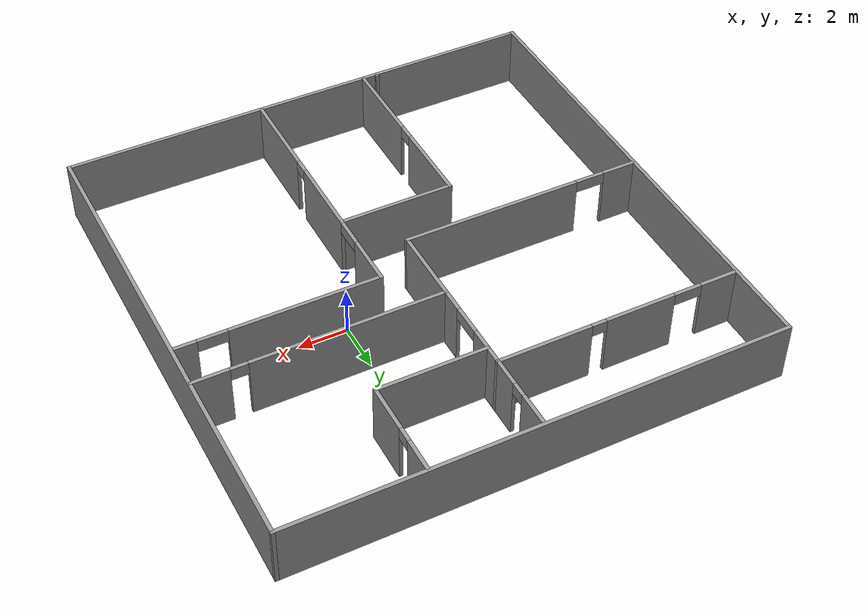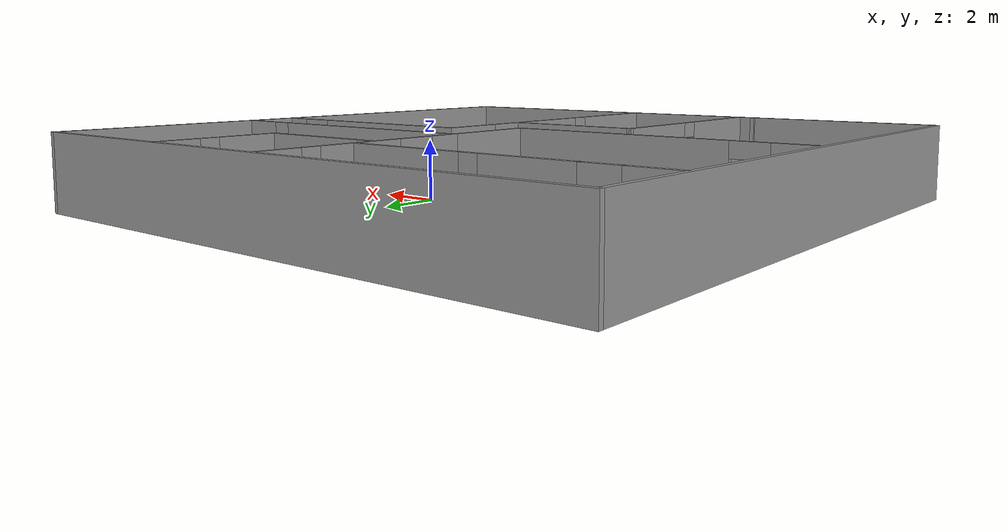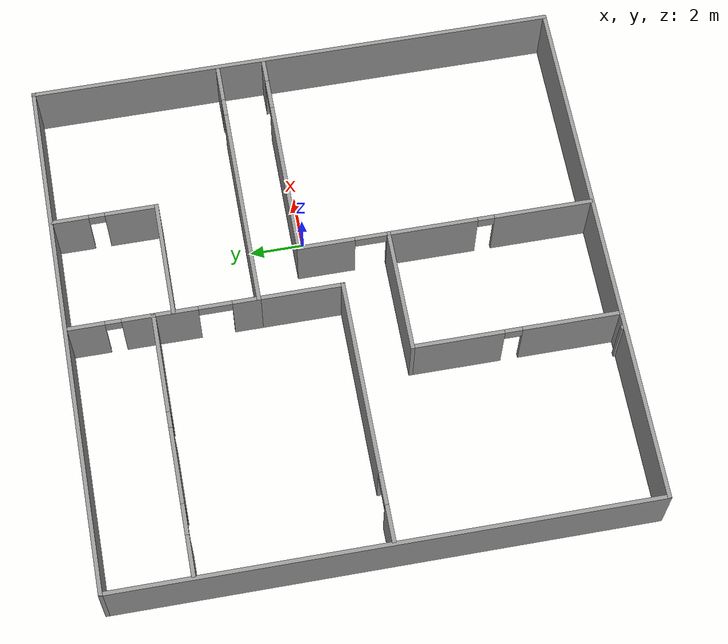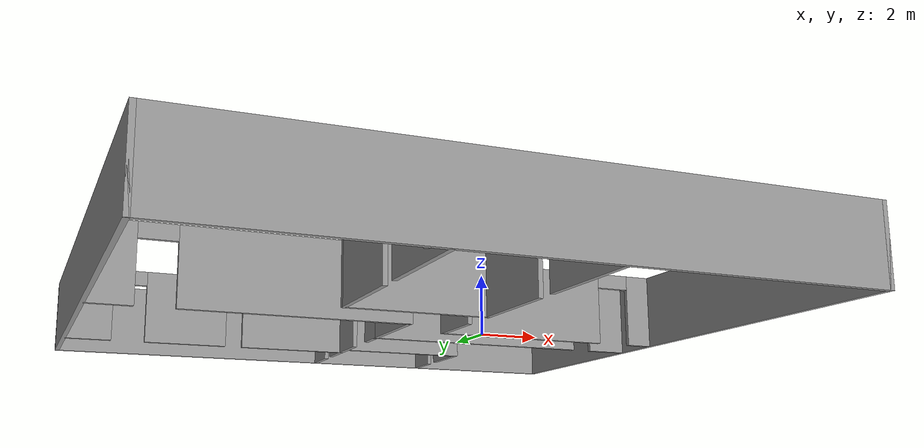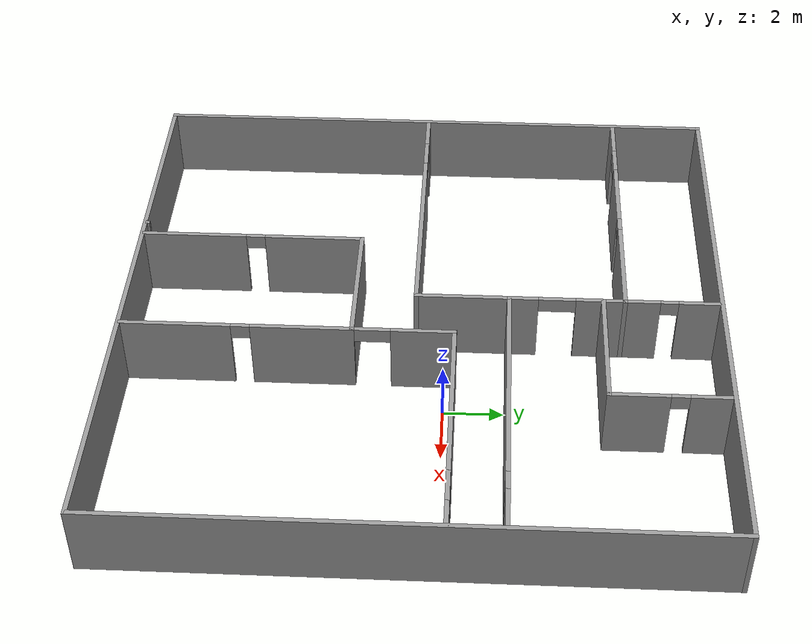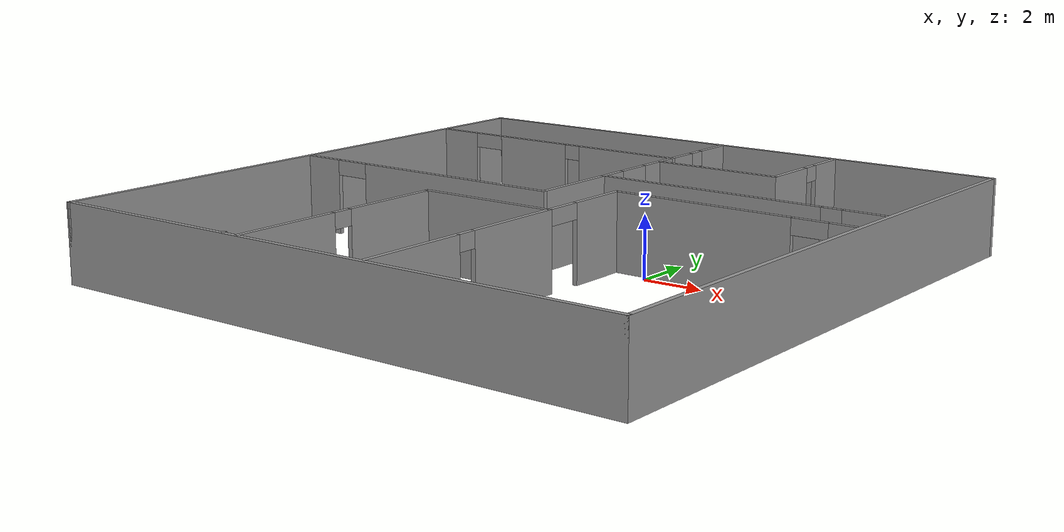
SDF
<?xml version='1.0'?>
<sdf version='1.6'>
  <model name='MAPv0.9'>
    <pose frame=''>-3.0494 -0.781174 0 0 -0 0</pose>
    <link name='Wall_11'>
      <pose frame=''>-4.89299 6.71712 0 0 -0 0</pose>
      <visual name='Wall_11_Visual_0'>
        <pose frame=''>-4.23368 0 1.25 0 -0 0</pose>
        <geometry>
          <box>
            <size>1.53263 0.15 2.5</size>
          </box>
        </geometry>
        <material>
          <script>
            <uri>file://media/materials/scripts/gazebo.material</uri>
            <name>Gazebo/Grey</name>
          </script>
          <ambient>1 1 1 1</ambient>
        </material>
        <meta>
          <layer>0</layer>
        </meta>
      </visual>
      <collision name='Wall_11_Collision_0'>
        <geometry>
          <box>
            <size>1.53263 0.15 2.5</size>
          </box>
        </geometry>
        <pose frame=''>-4.23368 0 1.25 0 -0 0</pose>
      </collision>
      <visual name='Wall_11_Visual_1'>
        <pose frame=''>-0.89726 0 1.25 0 -0 0</pose>
        <geometry>
          <box>
            <size>2.85749 0.15 2.5</size>
          </box>
        </geometry>
        <material>
          <script>
            <uri>file://media/materials/scripts/gazebo.material</uri>
            <name>Gazebo/Grey</name>
          </script>
          <ambient>1 1 1 1</ambient>
        </material>
        <meta>
          <layer>0</layer>
        </meta>
      </visual>
      <collision name='Wall_11_Collision_1'>
        <geometry>
          <box>
            <size>2.85749 0.15 2.5</size>
          </box>
        </geometry>
        <pose frame=''>-0.89726 0 1.25 0 -0 0</pose>
      </collision>
      <visual name='Wall_11_Visual_2'>
        <pose frame=''>3.06864 0 1.25 0 -0 0</pose>
        <geometry>
          <box>
            <size>3.86273 0.15 2.5</size>
          </box>
        </geometry>
        <material>
          <script>
            <uri>file://media/materials/scripts/gazebo.material</uri>
            <name>Gazebo/Grey</name>
          </script>
          <ambient>1 1 1 1</ambient>
        </material>
        <meta>
          <layer>0</layer>
        </meta>
      </visual>
      <collision name='Wall_11_Collision_2'>
        <geometry>
          <box>
            <size>3.86273 0.15 2.5</size>
          </box>
        </geometry>
        <pose frame=''>3.06864 0 1.25 0 -0 0</pose>
      </collision>
      <visual name='Wall_11_Visual_3'>
        <pose frame=''>-2.89669 0 2.25 0 -0 0</pose>
        <geometry>
          <box>
            <size>1.14136 0.15 0.5</size>
          </box>
        </geometry>
        <material>
          <script>
            <uri>file://media/materials/scripts/gazebo.material</uri>
            <name>Gazebo/Grey</name>
          </script>
          <ambient>1 1 1 1</ambient>
        </material>
        <meta>
          <layer>0</layer>
        </meta>
      </visual>
      <collision name='Wall_11_Collision_3'>
        <geometry>
          <box>
            <size>1.14136 0.15 0.5</size>
          </box>
        </geometry>
        <pose frame=''>-2.89669 0 2.25 0 -0 0</pose>
      </collision>
      <visual name='Wall_11_Visual_4'>
        <pose frame=''>0.834381 0 2.25 0 -0 0</pose>
        <geometry>
          <box>
            <size>0.605789 0.15 0.5</size>
          </box>
        </geometry>
        <material>
          <script>
            <uri>file://media/materials/scripts/gazebo.material</uri>
            <name>Gazebo/Grey</name>
          </script>
          <ambient>1 1 1 1</ambient>
        </material>
        <meta>
          <layer>0</layer>
        </meta>
      </visual>
      <collision name='Wall_11_Collision_4'>
        <geometry>
          <box>
            <size>0.605789 0.15 0.5</size>
          </box>
        </geometry>
        <pose frame=''>0.834381 0 2.25 0 -0 0</pose>
      </collision>
    </link>
    <link name='Wall_16'>
      <pose frame=''>0.032005 8.26712 0 0 -0 1.5708</pose>
      <visual name='Wall_16_Visual_0'>
        <pose frame=''>-1.00368 0 1.25 0 -0 0</pose>
        <geometry>
          <box>
            <size>1.24265 0.15 2.5</size>
          </box>
        </geometry>
        <material>
          <script>
            <uri>file://media/materials/scripts/gazebo.material</uri>
            <name>Gazebo/Grey</name>
          </script>
          <ambient>1 1 1 1</ambient>
        </material>
        <meta>
          <layer>0</layer>
        </meta>
      </visual>
      <collision name='Wall_16_Collision_0'>
        <geometry>
          <box>
            <size>1.24265 0.15 2.5</size>
          </box>
        </geometry>
        <pose frame=''>-1.00368 0 1.25 0 -0 0</pose>
      </collision>
      <visual name='Wall_16_Visual_1'>
        <pose frame=''>0.920473 0 1.25 0 -0 0</pose>
        <geometry>
          <box>
            <size>1.40905 0.15 2.5</size>
          </box>
        </geometry>
        <material>
          <script>
            <uri>file://media/materials/scripts/gazebo.material</uri>
            <name>Gazebo/Grey</name>
          </script>
          <ambient>1 1 1 1</ambient>
        </material>
        <meta>
          <layer>0</layer>
        </meta>
      </visual>
      <collision name='Wall_16_Collision_1'>
        <geometry>
          <box>
            <size>1.40905 0.15 2.5</size>
          </box>
        </geometry>
        <pose frame=''>0.920473 0 1.25 0 -0 0</pose>
      </collision>
      <visual name='Wall_16_Visual_2'>
        <pose frame=''>-0.083203 0 2.25 0 -0 0</pose>
        <geometry>
          <box>
            <size>0.598296 0.15 0.5</size>
          </box>
        </geometry>
        <material>
          <script>
            <uri>file://media/materials/scripts/gazebo.material</uri>
            <name>Gazebo/Grey</name>
          </script>
          <ambient>1 1 1 1</ambient>
        </material>
        <meta>
          <layer>0</layer>
        </meta>
      </visual>
      <collision name='Wall_16_Collision_2'>
        <geometry>
          <box>
            <size>0.598296 0.15 0.5</size>
          </box>
        </geometry>
        <pose frame=''>-0.083203 0 2.25 0 -0 0</pose>
      </collision>
    </link>
    <link name='Wall_18'>
      <pose frame=''>0.032005 4.79212 0 0 -0 -1.5708</pose>
      <visual name='Wall_18_Visual_0'>
        <pose frame=''>-1.14588 0 1.25 0 -0 0</pose>
        <geometry>
          <box>
            <size>1.70825 0.15 2.5</size>
          </box>
        </geometry>
        <material>
          <script>
            <uri>file://media/materials/scripts/gazebo.material</uri>
            <name>Gazebo/Grey</name>
          </script>
          <ambient>1 1 1 1</ambient>
        </material>
        <meta>
          <layer>0</layer>
        </meta>
      </visual>
      <collision name='Wall_18_Collision_0'>
        <geometry>
          <box>
            <size>1.70825 0.15 2.5</size>
          </box>
        </geometry>
        <pose frame=''>-1.14588 0 1.25 0 -0 0</pose>
      </collision>
      <visual name='Wall_18_Visual_1'>
        <pose frame=''>1.47509 0 1.25 0 -0 0</pose>
        <geometry>
          <box>
            <size>1.04982 0.15 2.5</size>
          </box>
        </geometry>
        <material>
          <script>
            <uri>file://media/materials/scripts/gazebo.material</uri>
            <name>Gazebo/Grey</name>
          </script>
          <ambient>1 1 1 1</ambient>
        </material>
        <meta>
          <layer>0</layer>
        </meta>
      </visual>
      <collision name='Wall_18_Collision_1'>
        <geometry>
          <box>
            <size>1.04982 0.15 2.5</size>
          </box>
        </geometry>
        <pose frame=''>1.47509 0 1.25 0 -0 0</pose>
      </collision>
      <visual name='Wall_18_Visual_2'>
        <pose frame=''>0.329213 0 2.25 0 -0 0</pose>
        <geometry>
          <box>
            <size>1.24193 0.15 0.5</size>
          </box>
        </geometry>
        <material>
          <script>
            <uri>file://media/materials/scripts/gazebo.material</uri>
            <name>Gazebo/Grey</name>
          </script>
          <ambient>1 1 1 1</ambient>
        </material>
        <meta>
          <layer>0</layer>
        </meta>
      </visual>
      <collision name='Wall_18_Collision_2'>
        <geometry>
          <box>
            <size>1.24193 0.15 0.5</size>
          </box>
        </geometry>
        <pose frame=''>0.329213 0 2.25 0 -0 0</pose>
      </collision>
    </link>
    <link name='Wall_19'>
      <pose frame=''>4.957 2.86712 0 0 -0 0</pose>
      <visual name='Wall_19_Visual_0'>
        <pose frame=''>-1.09816 0 1.25 0 -0 0</pose>
        <geometry>
          <box>
            <size>7.80368 0.15 2.5</size>
          </box>
        </geometry>
        <material>
          <script>
            <uri>file://media/materials/scripts/gazebo.material</uri>
            <name>Gazebo/Grey</name>
          </script>
          <ambient>1 1 1 1</ambient>
        </material>
        <meta>
          <layer>0</layer>
        </meta>
      </visual>
      <collision name='Wall_19_Collision_0'>
        <geometry>
          <box>
            <size>7.80368 0.15 2.5</size>
          </box>
        </geometry>
        <pose frame=''>-1.09816 0 1.25 0 -0 0</pose>
      </collision>
      <visual name='Wall_19_Visual_1'>
        <pose frame=''>4.24478 0 1.25 0 -0 0</pose>
        <geometry>
          <box>
            <size>1.51045 0.15 2.5</size>
          </box>
        </geometry>
        <material>
          <script>
            <uri>file://media/materials/scripts/gazebo.material</uri>
            <name>Gazebo/Grey</name>
          </script>
          <ambient>1 1 1 1</ambient>
        </material>
        <meta>
          <layer>0</layer>
        </meta>
      </visual>
      <collision name='Wall_19_Collision_1'>
        <geometry>
          <box>
            <size>1.51045 0.15 2.5</size>
          </box>
        </geometry>
        <pose frame=''>4.24478 0 1.25 0 -0 0</pose>
      </collision>
      <visual name='Wall_19_Visual_2'>
        <pose frame=''>3.14662 0 2.25 0 -0 0</pose>
        <geometry>
          <box>
            <size>0.685868 0.15 0.5</size>
          </box>
        </geometry>
        <material>
          <script>
            <uri>file://media/materials/scripts/gazebo.material</uri>
            <name>Gazebo/Grey</name>
          </script>
          <ambient>1 1 1 1</ambient>
        </material>
        <meta>
          <layer>0</layer>
        </meta>
      </visual>
      <collision name='Wall_19_Collision_2'>
        <geometry>
          <box>
            <size>0.685868 0.15 0.5</size>
          </box>
        </geometry>
        <pose frame=''>3.14662 0 2.25 0 -0 0</pose>
      </collision>
    </link>
    <link name='Wall_29'>
      <pose frame=''>4.39763 7.91653 0 0 -0 1.5708</pose>
      <visual name='Wall_29_Visual_0'>
        <pose frame=''>-0.995771 0 1.25 0 -0 0</pose>
        <geometry>
          <box>
            <size>2.00846 0.15 2.5</size>
          </box>
        </geometry>
        <material>
          <script>
            <uri>file://media/materials/scripts/gazebo.material</uri>
            <name>Gazebo/Grey</name>
          </script>
          <ambient>1 1 1 1</ambient>
        </material>
        <meta>
          <layer>0</layer>
        </meta>
      </visual>
      <collision name='Wall_29_Collision_0'>
        <geometry>
          <box>
            <size>2.00846 0.15 2.5</size>
          </box>
        </geometry>
        <pose frame=''>-0.995771 0 1.25 0 -0 0</pose>
      </collision>
      <visual name='Wall_29_Visual_1'>
        <pose frame=''>1.30338 0 1.25 0 -0 0</pose>
        <geometry>
          <box>
            <size>1.39325 0.15 2.5</size>
          </box>
        </geometry>
        <material>
          <script>
            <uri>file://media/materials/scripts/gazebo.material</uri>
            <name>Gazebo/Grey</name>
          </script>
          <ambient>1 1 1 1</ambient>
        </material>
        <meta>
          <layer>0</layer>
        </meta>
      </visual>
      <collision name='Wall_29_Collision_1'>
        <geometry>
          <box>
            <size>1.39325 0.15 2.5</size>
          </box>
        </geometry>
        <pose frame=''>1.30338 0 1.25 0 -0 0</pose>
      </collision>
      <visual name='Wall_29_Visual_2'>
        <pose frame=''>0.307607 0 2.25 0 -0 0</pose>
        <geometry>
          <box>
            <size>0.598296 0.15 0.5</size>
          </box>
        </geometry>
        <material>
          <script>
            <uri>file://media/materials/scripts/gazebo.material</uri>
            <name>Gazebo/Grey</name>
          </script>
          <ambient>1 1 1 1</ambient>
        </material>
        <meta>
          <layer>0</layer>
        </meta>
      </visual>
      <collision name='Wall_29_Collision_2'>
        <geometry>
          <box>
            <size>0.598296 0.15 0.5</size>
          </box>
        </geometry>
        <pose frame=''>0.307607 0 2.25 0 -0 0</pose>
      </collision>
    </link>
    <link name='Wall_33'>
      <collision name='Wall_33_Collision'>
        <geometry>
          <box>
            <size>4.5 0.15 2.5</size>
          </box>
        </geometry>
        <pose frame=''>0 0 1.25 0 -0 0</pose>
      </collision>
      <visual name='Wall_33_Visual'>
        <pose frame=''>0 0 1.25 0 -0 0</pose>
        <geometry>
          <box>
            <size>4.5 0.15 2.5</size>
          </box>
        </geometry>
        <material>
          <script>
            <uri>file://media/materials/scripts/gazebo.material</uri>
            <name>Gazebo/Grey</name>
          </script>
          <ambient>1 1 1 1</ambient>
        </material>
        <meta>
          <layer>0</layer>
        </meta>
      </visual>
      <pose frame=''>2.22263 5.99153 0 0 -0 3.14159</pose>
    </link>
    <link name='Wall_44'>
      <collision name='Wall_44_Collision'>
        <geometry>
          <box>
            <size>3.25 0.15 2.5</size>
          </box>
        </geometry>
        <pose frame=''>0 0 1.25 0 -0 0</pose>
      </collision>
      <visual name='Wall_44_Visual'>
        <pose frame=''>0 0 1.25 0 -0 0</pose>
        <geometry>
          <box>
            <size>3.25 0.15 2.5</size>
          </box>
        </geometry>
        <material>
          <script>
            <uri>file://media/materials/scripts/gazebo.material</uri>
            <name>Gazebo/Grey</name>
          </script>
          <ambient>1 1 1 1</ambient>
        </material>
        <meta>
          <layer>0</layer>
        </meta>
      </visual>
      <pose frame=''>0.032005 1.31712 0 0 -0 -1.5708</pose>
    </link>
    <link name='Wall_49'>
      <collision name='Wall_49_Collision'>
        <geometry>
          <box>
            <size>0.15 0.15 2.5</size>
          </box>
        </geometry>
        <pose frame=''>0 0 1.25 0 -0 0</pose>
      </collision>
      <visual name='Wall_49_Visual'>
        <pose frame=''>0 0 1.25 0 -0 0</pose>
        <geometry>
          <box>
            <size>0.15 0.15 2.5</size>
          </box>
        </geometry>
        <material>
          <script>
            <uri>file://media/materials/scripts/gazebo.material</uri>
            <name>Gazebo/Grey</name>
          </script>
          <ambient>1 1 1 1</ambient>
        </material>
        <meta>
          <layer>0</layer>
        </meta>
      </visual>
      <pose frame=''>-3.40579 -9.84113 0 0 -0 0</pose>
    </link>
    <link name='Wall_52'>
      <pose frame=''>-4.89299 -0.232884 0 0 -0 3.14159</pose>
      <visual name='Wall_52_Visual_0'>
        <pose frame=''>-1.30044 0 1.25 0 -0 0</pose>
        <geometry>
          <box>
            <size>7.39912 0.15 2.5</size>
          </box>
        </geometry>
        <material>
          <script>
            <uri>file://media/materials/scripts/gazebo.material</uri>
            <name>Gazebo/Grey</name>
          </script>
          <ambient>1 1 1 1</ambient>
        </material>
        <meta>
          <layer>0</layer>
        </meta>
      </visual>
      <collision name='Wall_52_Collision_0'>
        <geometry>
          <box>
            <size>7.39912 0.15 2.5</size>
          </box>
        </geometry>
        <pose frame=''>-1.30044 0 1.25 0 -0 0</pose>
      </collision>
      <visual name='Wall_52_Visual_1'>
        <pose frame=''>4.30251 0 1.25 0 -0 0</pose>
        <geometry>
          <box>
            <size>1.39498 0.15 2.5</size>
          </box>
        </geometry>
        <material>
          <script>
            <uri>file://media/materials/scripts/gazebo.material</uri>
            <name>Gazebo/Grey</name>
          </script>
          <ambient>1 1 1 1</ambient>
        </material>
        <meta>
          <layer>0</layer>
        </meta>
      </visual>
      <collision name='Wall_52_Collision_1'>
        <geometry>
          <box>
            <size>1.39498 0.15 2.5</size>
          </box>
        </geometry>
        <pose frame=''>4.30251 0 1.25 0 -0 0</pose>
      </collision>
      <visual name='Wall_52_Visual_2'>
        <pose frame=''>3.00207 0 2.25 0 -0 0</pose>
        <geometry>
          <box>
            <size>1.2059 0.15 0.5</size>
          </box>
        </geometry>
        <material>
          <script>
            <uri>file://media/materials/scripts/gazebo.material</uri>
            <name>Gazebo/Grey</name>
          </script>
          <ambient>1 1 1 1</ambient>
        </material>
        <meta>
          <layer>0</layer>
        </meta>
      </visual>
      <collision name='Wall_52_Collision_2'>
        <geometry>
          <box>
            <size>1.2059 0.15 0.5</size>
          </box>
        </geometry>
        <pose frame=''>3.00207 0 2.25 0 -0 0</pose>
      </collision>
    </link>
    <link name='Wall_54'>
      <pose frame=''>5.82786 1.10047 0 0 -0 3.14159</pose>
      <visual name='Wall_54_Visual_0'>
        <pose frame=''>-3.63187 0 1.25 0 -0 0</pose>
        <geometry>
          <box>
            <size>0.986265 0.15 2.5</size>
          </box>
        </geometry>
        <material>
          <script>
            <uri>file://media/materials/scripts/gazebo.material</uri>
            <name>Gazebo/Grey</name>
          </script>
          <ambient>1 1 1 1</ambient>
        </material>
        <meta>
          <layer>0</layer>
        </meta>
      </visual>
      <collision name='Wall_54_Collision_0'>
        <geometry>
          <box>
            <size>0.986265 0.15 2.5</size>
          </box>
        </geometry>
        <pose frame=''>-3.63187 0 1.25 0 -0 0</pose>
      </collision>
      <visual name='Wall_54_Visual_1'>
        <pose frame=''>1.08079 0 1.25 0 -0 0</pose>
        <geometry>
          <box>
            <size>6.08842 0.15 2.5</size>
          </box>
        </geometry>
        <material>
          <script>
            <uri>file://media/materials/scripts/gazebo.material</uri>
            <name>Gazebo/Grey</name>
          </script>
          <ambient>1 1 1 1</ambient>
        </material>
        <meta>
          <layer>0</layer>
        </meta>
      </visual>
      <collision name='Wall_54_Collision_1'>
        <geometry>
          <box>
            <size>6.08842 0.15 2.5</size>
          </box>
        </geometry>
        <pose frame=''>1.08079 0 1.25 0 -0 0</pose>
      </collision>
      <visual name='Wall_54_Visual_2'>
        <pose frame=''>-2.55108 0 2.25 0 -0 0</pose>
        <geometry>
          <box>
            <size>1.17531 0.15 0.5</size>
          </box>
        </geometry>
        <material>
          <script>
            <uri>file://media/materials/scripts/gazebo.material</uri>
            <name>Gazebo/Grey</name>
          </script>
          <ambient>1 1 1 1</ambient>
        </material>
        <meta>
          <layer>0</layer>
        </meta>
      </visual>
      <collision name='Wall_54_Collision_2'>
        <geometry>
          <box>
            <size>1.17531 0.15 0.5</size>
          </box>
        </geometry>
        <pose frame=''>-2.55108 0 2.25 0 -0 0</pose>
      </collision>
    </link>
    <link name='Wall_56'>
      <pose frame=''>1.77786 -0.574529 0 0 -0 1.5708</pose>
      <visual name='Wall_56_Visual_0'>
        <pose frame=''>-1.68495 0 1.25 0 -0 0</pose>
        <geometry>
          <box>
            <size>0.130109 0.15 2.5</size>
          </box>
        </geometry>
        <material>
          <script>
            <uri>file://media/materials/scripts/gazebo.material</uri>
            <name>Gazebo/Grey</name>
          </script>
          <ambient>1 1 1 1</ambient>
        </material>
        <meta>
          <layer>0</layer>
        </meta>
      </visual>
      <collision name='Wall_56_Collision_0'>
        <geometry>
          <box>
            <size>0.130109 0.15 2.5</size>
          </box>
        </geometry>
        <pose frame=''>-1.68495 0 1.25 0 -0 0</pose>
      </collision>
      <visual name='Wall_56_Visual_1'>
        <pose frame=''>0.668006 0 1.25 0 -0 0</pose>
        <geometry>
          <box>
            <size>2.16399 0.15 2.5</size>
          </box>
        </geometry>
        <material>
          <script>
            <uri>file://media/materials/scripts/gazebo.material</uri>
            <name>Gazebo/Grey</name>
          </script>
          <ambient>1 1 1 1</ambient>
        </material>
        <meta>
          <layer>0</layer>
        </meta>
      </visual>
      <collision name='Wall_56_Collision_1'>
        <geometry>
          <box>
            <size>2.16399 0.15 2.5</size>
          </box>
        </geometry>
        <pose frame=''>0.668006 0 1.25 0 -0 0</pose>
      </collision>
      <visual name='Wall_56_Visual_2'>
        <pose frame=''>-1.01694 0 2.25 0 -0 0</pose>
        <geometry>
          <box>
            <size>1.2059 0.15 0.5</size>
          </box>
        </geometry>
        <material>
          <script>
            <uri>file://media/materials/scripts/gazebo.material</uri>
            <name>Gazebo/Grey</name>
          </script>
          <ambient>1 1 1 1</ambient>
        </material>
        <meta>
          <layer>0</layer>
        </meta>
      </visual>
      <collision name='Wall_56_Collision_2'>
        <geometry>
          <box>
            <size>1.2059 0.15 0.5</size>
          </box>
        </geometry>
        <pose frame=''>-1.01694 0 2.25 0 -0 0</pose>
      </collision>
    </link>
    <link name='Wall_58'>
      <collision name='Wall_58_Collision'>
        <geometry>
          <box>
            <size>4.75 0.15 2.5</size>
          </box>
        </geometry>
        <pose frame=''>0 0 1.25 0 -0 0</pose>
      </collision>
      <visual name='Wall_58_Visual'>
        <pose frame=''>0 0 1.25 0 -0 0</pose>
        <geometry>
          <box>
            <size>4.75 0.15 2.5</size>
          </box>
        </geometry>
        <material>
          <script>
            <uri>file://media/materials/scripts/gazebo.material</uri>
            <name>Gazebo/Grey</name>
          </script>
          <ambient>1 1 1 1</ambient>
        </material>
        <meta>
          <layer>0</layer>
        </meta>
      </visual>
      <pose frame=''>-0.522144 -2.24953 0 0 -0 3.14159</pose>
    </link>
    <link name='Wall_59'>
      <pose frame=''>-2.82214 -6.04953 0 0 -0 -1.5708</pose>
      <visual name='Wall_59_Visual_0'>
        <pose frame=''>-2.1508 0 1.25 0 -0 0</pose>
        <geometry>
          <box>
            <size>3.44841 0.15 2.5</size>
          </box>
        </geometry>
        <material>
          <script>
            <uri>file://media/materials/scripts/gazebo.material</uri>
            <name>Gazebo/Grey</name>
          </script>
          <ambient>1 1 1 1</ambient>
        </material>
        <meta>
          <layer>0</layer>
        </meta>
      </visual>
      <collision name='Wall_59_Collision_0'>
        <geometry>
          <box>
            <size>3.44841 0.15 2.5</size>
          </box>
        </geometry>
        <pose frame=''>-2.1508 0 1.25 0 -0 0</pose>
      </collision>
      <visual name='Wall_59_Visual_1'>
        <pose frame=''>2.05184 0 1.25 0 -0 0</pose>
        <geometry>
          <box>
            <size>3.64631 0.15 2.5</size>
          </box>
        </geometry>
        <material>
          <script>
            <uri>file://media/materials/scripts/gazebo.material</uri>
            <name>Gazebo/Grey</name>
          </script>
          <ambient>1 1 1 1</ambient>
        </material>
        <meta>
          <layer>0</layer>
        </meta>
      </visual>
      <collision name='Wall_59_Collision_1'>
        <geometry>
          <box>
            <size>3.64631 0.15 2.5</size>
          </box>
        </geometry>
        <pose frame=''>2.05184 0 1.25 0 -0 0</pose>
      </collision>
      <visual name='Wall_59_Visual_2'>
        <pose frame=''>-0.098952 0 2.25 0 -0 0</pose>
        <geometry>
          <box>
            <size>0.655278 0.15 0.5</size>
          </box>
        </geometry>
        <material>
          <script>
            <uri>file://media/materials/scripts/gazebo.material</uri>
            <name>Gazebo/Grey</name>
          </script>
          <ambient>1 1 1 1</ambient>
        </material>
        <meta>
          <layer>0</layer>
        </meta>
      </visual>
      <collision name='Wall_59_Collision_2'>
        <geometry>
          <box>
            <size>0.655278 0.15 0.5</size>
          </box>
        </geometry>
        <pose frame=''>-0.098952 0 2.25 0 -0 0</pose>
      </collision>
    </link>
    <link name='Wall_6'>
      <collision name='Wall_6_Collision'>
        <geometry>
          <box>
            <size>20 0.15 2.5</size>
          </box>
        </geometry>
        <pose frame=''>0 0 1.25 0 -0 0</pose>
      </collision>
      <visual name='Wall_6_Visual'>
        <pose frame=''>0 0 1.25 0 -0 0</pose>
        <geometry>
          <box>
            <size>20 0.15 2.5</size>
          </box>
        </geometry>
        <material>
          <script>
            <uri>file://media/materials/scripts/gazebo.material</uri>
            <name>Gazebo/Grey</name>
          </script>
          <ambient>1 1 1 1</ambient>
        </material>
        <meta>
          <layer>0</layer>
        </meta>
      </visual>
      <pose frame=''>-9.925 0 0 0 -0 -1.5708</pose>
    </link>
    <link name='Wall_61'>
      <pose frame=''>1.77786 -6.04953 0 0 -0 -1.5708</pose>
      <visual name='Wall_61_Visual_0'>
        <pose frame=''>-2.16609 0 1.25 0 -0 0</pose>
        <geometry>
          <box>
            <size>3.41782 0.15 2.5</size>
          </box>
        </geometry>
        <material>
          <script>
            <uri>file://media/materials/scripts/gazebo.material</uri>
            <name>Gazebo/Grey</name>
          </script>
          <ambient>1 1 1 1</ambient>
        </material>
        <meta>
          <layer>0</layer>
        </meta>
      </visual>
      <collision name='Wall_61_Collision_0'>
        <geometry>
          <box>
            <size>3.41782 0.15 2.5</size>
          </box>
        </geometry>
        <pose frame=''>-2.16609 0 1.25 0 -0 0</pose>
      </collision>
      <visual name='Wall_61_Visual_1'>
        <pose frame=''>2.02125 0 1.25 0 -0 0</pose>
        <geometry>
          <box>
            <size>3.70749 0.15 2.5</size>
          </box>
        </geometry>
        <material>
          <script>
            <uri>file://media/materials/scripts/gazebo.material</uri>
            <name>Gazebo/Grey</name>
          </script>
          <ambient>1 1 1 1</ambient>
        </material>
        <meta>
          <layer>0</layer>
        </meta>
      </visual>
      <collision name='Wall_61_Collision_1'>
        <geometry>
          <box>
            <size>3.70749 0.15 2.5</size>
          </box>
        </geometry>
        <pose frame=''>2.02125 0 1.25 0 -0 0</pose>
      </collision>
      <visual name='Wall_61_Visual_2'>
        <pose frame=''>-0.144838 0 2.25 0 -0 0</pose>
        <geometry>
          <box>
            <size>0.624688 0.15 0.5</size>
          </box>
        </geometry>
        <material>
          <script>
            <uri>file://media/materials/scripts/gazebo.material</uri>
            <name>Gazebo/Grey</name>
          </script>
          <ambient>1 1 1 1</ambient>
        </material>
        <meta>
          <layer>0</layer>
        </meta>
      </visual>
      <collision name='Wall_61_Collision_2'>
        <geometry>
          <box>
            <size>0.624688 0.15 0.5</size>
          </box>
        </geometry>
        <pose frame=''>-0.144838 0 2.25 0 -0 0</pose>
      </collision>
    </link>
    <link name='Wall_7'>
      <collision name='Wall_7_Collision'>
        <geometry>
          <box>
            <size>20 0.15 2.5</size>
          </box>
        </geometry>
        <pose frame=''>0 0 1.25 0 -0 0</pose>
      </collision>
      <visual name='Wall_7_Visual'>
        <pose frame=''>0 0 1.25 0 -0 0</pose>
        <geometry>
          <box>
            <size>20 0.15 2.5</size>
          </box>
        </geometry>
        <material>
          <script>
            <uri>file://media/materials/scripts/gazebo.material</uri>
            <name>Gazebo/Grey</name>
          </script>
          <ambient>1 1 1 1</ambient>
        </material>
        <meta>
          <layer>0</layer>
        </meta>
      </visual>
      <pose frame=''>-0 -9.925 0 0 -0 0</pose>
    </link>
    <link name='Wall_8'>
      <collision name='Wall_8_Collision'>
        <geometry>
          <box>
            <size>20 0.15 2.5</size>
          </box>
        </geometry>
        <pose frame=''>0 0 1.25 0 -0 0</pose>
      </collision>
      <visual name='Wall_8_Visual'>
        <pose frame=''>0 0 1.25 0 -0 0</pose>
        <geometry>
          <box>
            <size>20 0.15 2.5</size>
          </box>
        </geometry>
        <material>
          <script>
            <uri>file://media/materials/scripts/gazebo.material</uri>
            <name>Gazebo/Grey</name>
          </script>
          <ambient>1 1 1 1</ambient>
        </material>
        <meta>
          <layer>0</layer>
        </meta>
      </visual>
      <pose frame=''>9.925 0 0 0 -0 1.5708</pose>
    </link>
    <link name='Wall_9'>
      <collision name='Wall_9_Collision'>
        <geometry>
          <box>
            <size>20 0.15 2.5</size>
          </box>
        </geometry>
        <pose frame=''>0 0 1.25 0 -0 0</pose>
      </collision>
      <visual name='Wall_9_Visual'>
        <pose frame=''>0 0 1.25 0 -0 0</pose>
        <geometry>
          <box>
            <size>20 0.15 2.5</size>
          </box>
        </geometry>
        <material>
          <script>
            <uri>file://media/materials/scripts/gazebo.material</uri>
            <name>Gazebo/Grey</name>
          </script>
          <ambient>1 1 1 1</ambient>
        </material>
        <meta>
          <layer>0</layer>
        </meta>
      </visual>
      <pose frame=''>-0 9.925 0 0 -0 3.14159</pose>
    </link>
    <static>1</static>
  </model>
</sdf>
